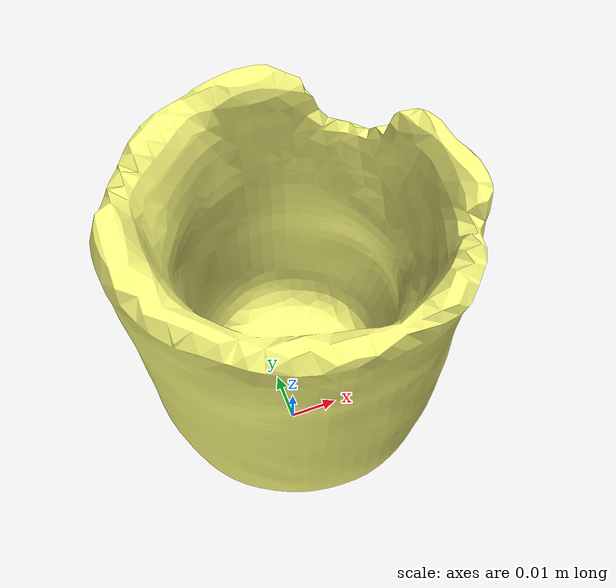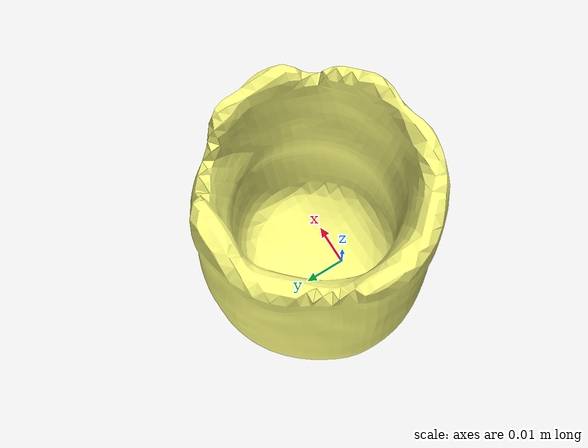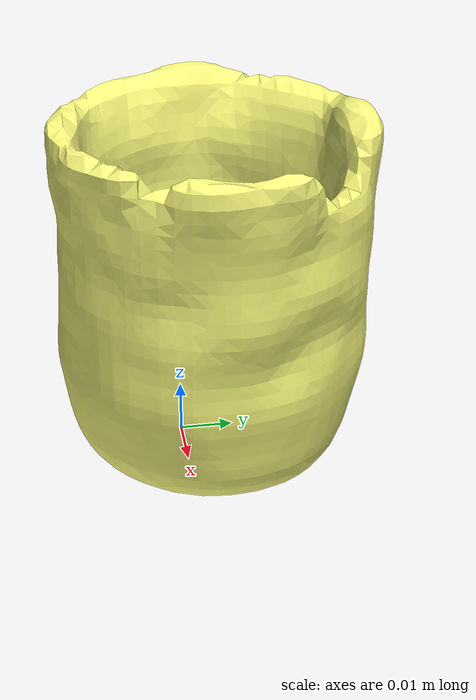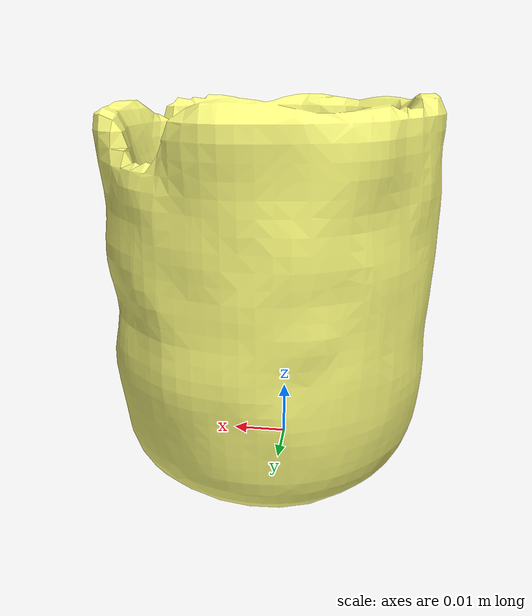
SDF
<?xml version="1.0" ?>
<sdf version='1.4'>
  <model name="cup_b">
      <static>0</static>
      <link name='link'>
        <inertial>
          <!-- Placeholder, -->
          <mass>0.02</mass>
          <inertia>
            <ixx>0.00002454271</ixx>
            <ixy>0.000000</ixy>
            <ixz>0.000000</ixz>
            <iyy>0.0001689116</iyy>
            <iyz>0.000000</iyz>
            <izz>0.00018046111</izz>
          </inertia>
        </inertial>
        <collision name='collision'>
          <geometry>
            <mesh>
              <uri>model://cup_b/meshes/cup_b.stl</uri>
              <scale>1 1 1</scale>
            </mesh>
          </geometry>
          <surface>
            <friction>
              <ode>
                <mu>30.0</mu>
                <mu2>30.0</mu2>
              </ode>
            </friction>
          </surface>
        </collision>
        <visual name='visual'>
          <geometry>
            <mesh>
              <uri>model://cup_b/meshes/cup_b.dae</uri>
              <scale>1 1 1</scale>
            </mesh>
          </geometry>
          <material>
            <diffuse>1 1 0.5 1</diffuse>
          </material>
        </visual>
        <velocity_decay>
          <linear>0.000000</linear>
          <angular>0.000000</angular>
        </velocity_decay>
        <self_collide>0</self_collide>
        <kinematic>0</kinematic>
        <gravity>1</gravity>
      </link>
  </model>
</sdf>
